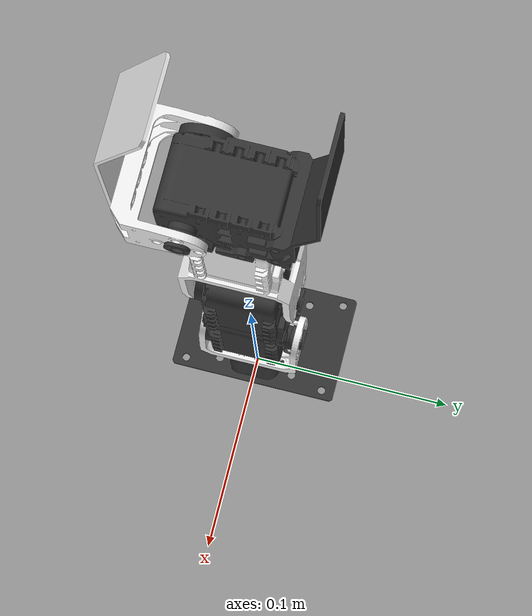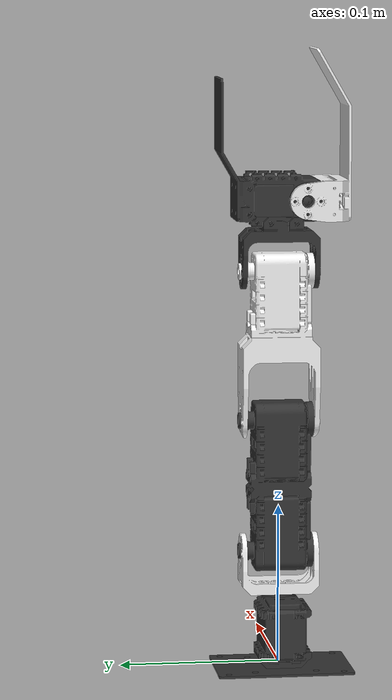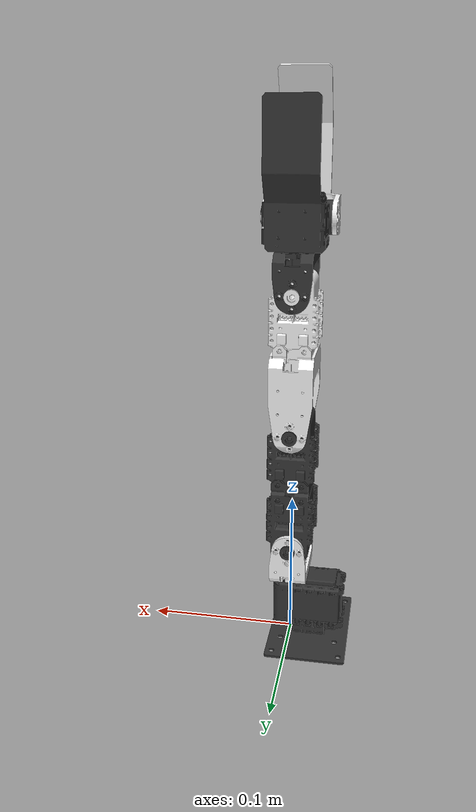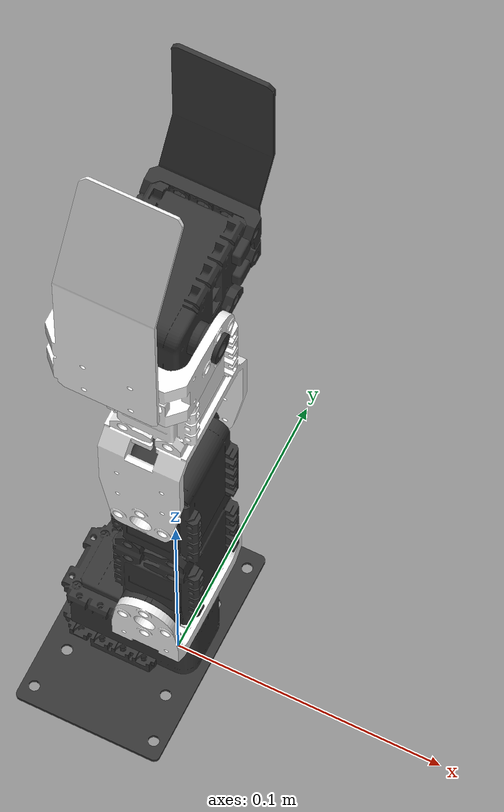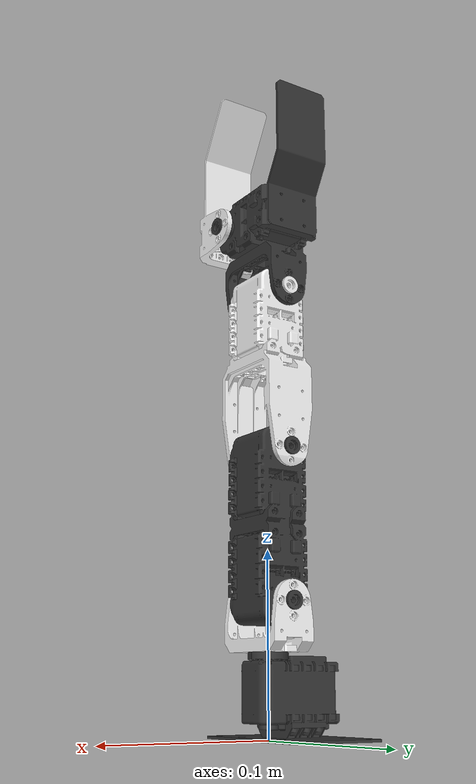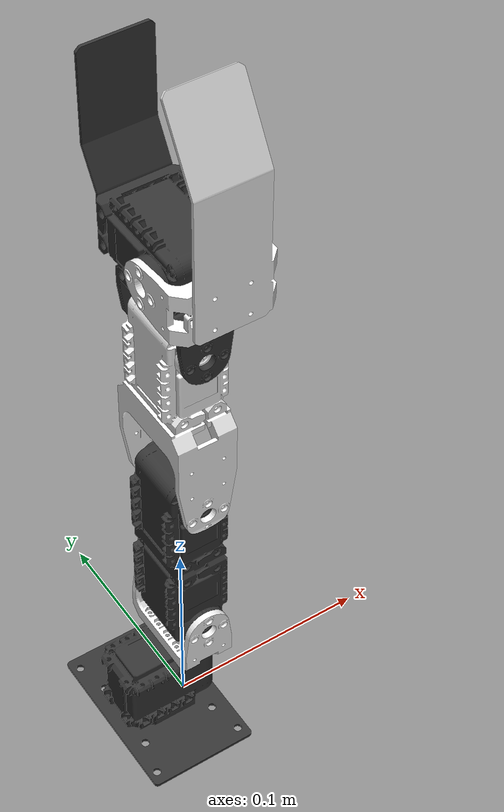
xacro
<?xml version="1.0"?>

<robot
    name="crane_plus"
    xmlns:xacro="http://ros.org/wiki/xacro"
    xmlns:sensor="http://playerstage.sourceforge.net/gazebo/xmlschema/#sensor"
    xmlns:controller="http://playerstage.sourceforge.net/gazebo/xmlschema/#controller"
    xmlns:interface="http://playerstage.sourceforge.net/gazebo/xmlschema/#interface">

  <xacro:include filename="$(find crane_plus_description)/urdf/crane_plus.xacro"/>
  <xacro:include filename="$(find crane_plus_description)/urdf/crane_plus.ros2_control.xacro"/>
  <xacro:include filename="$(find crane_plus_description)/urdf/crane_plus.gazebo.xacro"/>
  <xacro:include filename="$(find crane_plus_description)/urdf/crane_plus.gazebo_ros2_control.xacro"/>

  <xacro:arg name="use_gazebo" default="false" />
  <xacro:arg name="use_ignition" default="false" />
  <xacro:arg name="use_camera" default="false" />
  <xacro:arg name="port_name" default="/dev/ttyUSB0" />
  <xacro:arg name="baudrate" default="1000000" />
  <xacro:arg name="timeout_seconds" default="5.0" />
  <xacro:arg name="read_velocities" default="0" />
  <xacro:arg name="read_loads" default="0" />
  <xacro:arg name="read_voltages" default="0" />
  <xacro:arg name="read_temperatures" default="0" />
  <xacro:arg name="gz_control_config_package" default="" />
  <xacro:arg name="gz_control_config_file_path" default="" />
  <xacro:arg name="endtip_offset_xyz" default="0 0 0" />
  <xacro:arg name="endtip_offset_rpy" default="0 0 0" />

  <!-- Link to provide the location reference for the arm -->
  <link name="base_link"/>

  <!-- Used for fixing robot to Gazebo 'base_link' -->
  <link name="world"/>

  <joint name="base_link_to_world_joint" type="fixed">
    <parent link="world"/>
    <child link="base_link"/>
  </joint>

  <xacro:property name="NAME_LINK_BASE" value="crane_plus_base"/>
  <xacro:property name="NAME_LINK_1" value="crane_plus_link1"/>
  <xacro:property name="NAME_LINK_2" value="crane_plus_link2"/>
  <xacro:property name="NAME_LINK_3" value="crane_plus_link3"/>
  <xacro:property name="NAME_LINK_4" value="crane_plus_link4"/>
  <xacro:property name="NAME_LINK_HAND" value="crane_plus_link_hand"/>
  <xacro:property name="NAME_LINK_ENDTIP" value="crane_plus_link_endtip"/>

  <xacro:property name="NAME_JOINT_BASE" value="crane_plus_joint_base"/>
  <xacro:property name="NAME_JOINT_1" value="crane_plus_joint1"/>
  <xacro:property name="NAME_JOINT_2" value="crane_plus_joint2"/>
  <xacro:property name="NAME_JOINT_3" value="crane_plus_joint3"/>
  <xacro:property name="NAME_JOINT_4" value="crane_plus_joint4"/>
  <xacro:property name="NAME_JOINT_HAND" value="crane_plus_joint_hand"/>
  <xacro:property name="NAME_JOINT_ENDTIP" value="crane_plus_joint_endtip"/>

  <xacro:property name="M_PI" value="3.14159"/>
  <xacro:property name="TO_RADIAN" value="${M_PI / 180.0}"/>
  <xacro:property name="SERVO_HOME" value="${TO_RADIAN * 150.0}"/>
  <xacro:property name="JOINT_VELOCITY_LIMIT" value="2.0"/>
  <xacro:property name="JOINT_1_LOWER_LIMIT" value="${0.0 * TO_RADIAN - SERVO_HOME}"/>
  <xacro:property name="JOINT_1_UPPER_LIMIT" value="${300.0 * TO_RADIAN - SERVO_HOME}"/>
  <xacro:property name="JOINT_2_LOWER_LIMIT" value="${45.45 * TO_RADIAN - SERVO_HOME}"/>
  <xacro:property name="JOINT_2_UPPER_LIMIT" value="${252.20 * TO_RADIAN - SERVO_HOME}"/>
  <xacro:property name="JOINT_3_LOWER_LIMIT" value="${3.52 * TO_RADIAN - SERVO_HOME}"/>
  <xacro:property name="JOINT_3_UPPER_LIMIT" value="${290.62 * TO_RADIAN - SERVO_HOME}"/>
  <xacro:property name="JOINT_4_LOWER_LIMIT" value="${44.57 * TO_RADIAN - SERVO_HOME}"/>
  <xacro:property name="JOINT_4_UPPER_LIMIT" value="${251.32 * TO_RADIAN - SERVO_HOME}"/>
  <xacro:property name="JOINT_HAND_LOWER_LIMIT" value="${109.38 * TO_RADIAN - SERVO_HOME}"/>
  <xacro:property name="JOINT_HAND_UPPER_LIMIT" value="${188.27 * TO_RADIAN - SERVO_HOME}"/>

  <xacro:crane_plus
    parent="base_link"
    name_link_base="${NAME_LINK_BASE}"
    name_link_1="${NAME_LINK_1}"
    name_link_2="${NAME_LINK_2}"
    name_link_3="${NAME_LINK_3}"
    name_link_4="${NAME_LINK_4}"
    name_link_hand="${NAME_LINK_HAND}"
    name_link_endtip="${NAME_LINK_ENDTIP}"
    name_joint_base="${NAME_JOINT_BASE}"
    name_joint_1="${NAME_JOINT_1}"
    name_joint_2="${NAME_JOINT_2}"
    name_joint_3="${NAME_JOINT_3}"
    name_joint_4="${NAME_JOINT_4}"
    name_joint_hand="${NAME_JOINT_HAND}"
    name_joint_endtip="${NAME_JOINT_ENDTIP}"

    joints_vlimit="${JOINT_VELOCITY_LIMIT}"
    joint_1_lower_limit="${JOINT_1_LOWER_LIMIT}"
    joint_1_upper_limit="${JOINT_1_UPPER_LIMIT}"
    joint_2_lower_limit="${JOINT_2_LOWER_LIMIT}"
    joint_2_upper_limit="${JOINT_2_UPPER_LIMIT}"
    joint_3_lower_limit="${JOINT_3_LOWER_LIMIT}"
    joint_3_upper_limit="${JOINT_3_UPPER_LIMIT}"
    joint_4_lower_limit="${JOINT_4_LOWER_LIMIT}"
    joint_4_upper_limit="${JOINT_4_UPPER_LIMIT}"
    joint_hand_lower_limit="${JOINT_HAND_LOWER_LIMIT}"
    joint_hand_upper_limit="${JOINT_HAND_UPPER_LIMIT}"
    use_camera="$(arg use_camera)"
    endtip_offset_xyz="$(arg endtip_offset_xyz)"
    endtip_offset_rpy="$(arg endtip_offset_rpy)">
    <origin xyz="0 0 0"/>
  </xacro:crane_plus>

  <xacro:unless value="$(arg use_gazebo)">
    <xacro:crane_plus_ros2_control_settings
      name="crane_plus"
      name_joint_1="${NAME_JOINT_1}"
      name_joint_2="${NAME_JOINT_2}"
      name_joint_3="${NAME_JOINT_3}"
      name_joint_4="${NAME_JOINT_4}"
      name_joint_hand="${NAME_JOINT_HAND}"
      joint_1_lower_limit="${JOINT_1_LOWER_LIMIT}"
      joint_1_upper_limit="${JOINT_1_UPPER_LIMIT}"
      joint_2_lower_limit="${JOINT_2_LOWER_LIMIT}"
      joint_2_upper_limit="${JOINT_2_UPPER_LIMIT}"
      joint_3_lower_limit="${JOINT_3_LOWER_LIMIT}"
      joint_3_upper_limit="${JOINT_3_UPPER_LIMIT}"
      joint_4_lower_limit="${JOINT_4_LOWER_LIMIT}"
      joint_4_upper_limit="${JOINT_4_UPPER_LIMIT}"
      joint_hand_lower_limit="${JOINT_HAND_LOWER_LIMIT}"
      joint_hand_upper_limit="${JOINT_HAND_UPPER_LIMIT}"
      port_name="$(arg port_name)"
      baudrate="$(arg baudrate)"
      timeout_seconds="$(arg timeout_seconds)"
      read_velocities="$(arg read_velocities)"
      read_loads="$(arg read_loads)"
      read_voltages="$(arg read_voltages)"
      read_temperatures="$(arg read_temperatures)" />
  </xacro:unless>

  <xacro:if value="$(arg use_gazebo)">
    <xacro:gazebo_robot_settings
      name_link_base="${NAME_LINK_BASE}"
      name_link_1="${NAME_LINK_1}"
      name_link_2="${NAME_LINK_2}"
      name_link_3="${NAME_LINK_3}"
      name_link_4="${NAME_LINK_4}"
      name_link_hand="${NAME_LINK_HAND}"
      use_ignition="$(arg use_ignition)"
      config_package="$(arg gz_control_config_package)"
      config_file_path="$(arg gz_control_config_file_path)" />

    <xacro:crane_plus_gazebo_ros2_control_settings
      name="crane_plus"
      name_joint_1="${NAME_JOINT_1}"
      name_joint_2="${NAME_JOINT_2}"
      name_joint_3="${NAME_JOINT_3}"
      name_joint_4="${NAME_JOINT_4}"
      name_joint_hand="${NAME_JOINT_HAND}"
      joint_1_lower_limit="${JOINT_1_LOWER_LIMIT}"
      joint_1_upper_limit="${JOINT_1_UPPER_LIMIT}"
      joint_2_lower_limit="${JOINT_2_LOWER_LIMIT}"
      joint_2_upper_limit="${JOINT_2_UPPER_LIMIT}"
      joint_3_lower_limit="${JOINT_3_LOWER_LIMIT}"
      joint_3_upper_limit="${JOINT_3_UPPER_LIMIT}"
      joint_4_lower_limit="${JOINT_4_LOWER_LIMIT}"
      joint_4_upper_limit="${JOINT_4_UPPER_LIMIT}"
      joint_hand_lower_limit="${JOINT_HAND_LOWER_LIMIT}"
      joint_hand_upper_limit="${JOINT_HAND_UPPER_LIMIT}"
      use_ignition="$(arg use_ignition)" />
  </xacro:if>

</robot>

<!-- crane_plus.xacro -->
<robot xmlns:xacro="http://ros.org/wiki/xacro">

  <material name="black">
    <color rgba="0.2 0.2 0.2 1.0"/>
  </material>
  <material name="white">
    <color rgba="0.95 0.95 0.95 1.0"/>
  </material>
  <material name="silver">
    <color rgba="0.75 0.75 0.75 1.0"/>
  </material>
  <material name="red">
    <color rgba="1.0 0.3 0.3 1.0"/>
  </material>
  <material name="green">
    <color rgba="0.3 1.0 0.3 1.0"/>
  </material>
  <material name="blue">
    <color rgba="0.3 0.3 1.0 1.0"/>
  </material>

  <xacro:property name="SCALE_MM" value="0.001"/>
  <xacro:property name="SCALE_CM" value="0.01"/>

  <xacro:property name="MESH_LINK_BASE" value="crane_plus_description/meshes/visual/body_20201013.stl"/>
  <xacro:property name="MESH_LINK_1" value="crane_plus_description/meshes/visual/Link1_20201013.stl"/>
  <xacro:property name="MESH_LINK_2" value="crane_plus_description/meshes/visual/Link2_20201013.stl"/>
  <xacro:property name="MESH_LINK_3" value="crane_plus_description/meshes/visual/Link3_20201013.stl"/>
  <xacro:property name="MESH_LINK_4" value="crane_plus_description/meshes/visual/Link4_20201013.stl"/>
  <xacro:property name="MESH_LINK_HAND" value="crane_plus_description/meshes/visual/Hand_20201013.stl"/>

  <xacro:property name="MESH_COLLISION_LINK_BASE" value="crane_plus_description/meshes/collision/body_collision_20201013.stl"/>
  <xacro:property name="MESH_COLLISION_LINK_1" value="crane_plus_description/meshes/collision/Link1_collision_20201013.stl"/>
  <xacro:property name="MESH_COLLISION_LINK_2" value="crane_plus_description/meshes/collision/Link2_collision_20201013.stl"/>
  <xacro:property name="MESH_COLLISION_LINK_3" value="crane_plus_description/meshes/collision/Link3_collision_20201013.stl"/>
  <xacro:property name="MESH_COLLISION_LINK_4" value="crane_plus_description/meshes/collision/Link4_collision_20201013.stl"/>
  <xacro:property name="MESH_COLLISION_LINK_HAND" value="crane_plus_description/meshes/collision/Hand_collision_20201013.stl"/>

  <xacro:macro name="crane_plus"
      params="parent
              name_link_base
              name_link_1
              name_link_2
              name_link_3
              name_link_4
              name_link_hand
              name_link_endtip
              name_joint_base
              name_joint_1
              name_joint_2
              name_joint_3
              name_joint_4
              name_joint_hand
              name_joint_endtip
              joints_vlimit
              joint_1_lower_limit
              joint_1_upper_limit
              joint_2_lower_limit
              joint_2_upper_limit
              joint_3_lower_limit
              joint_3_upper_limit
              joint_4_lower_limit
              joint_4_upper_limit
              joint_hand_lower_limit
              joint_hand_upper_limit
              use_camera
              endtip_offset_xyz
              endtip_offset_rpy
              *origin">

    <joint name="${name_joint_base}" type="fixed">
      <xacro:insert_block name="origin"/>
      <parent link="${parent}"/>
      <child link="${name_link_base}"/>
    </joint>

    <link name="${name_link_base}">
      <visual>
        <origin xyz="0 0 0" rpy="0 0 0"/>
        <geometry>
          <mesh filename="package://${MESH_LINK_BASE}"
              scale="1 1 1"/>
        </geometry>
        <material name="black"/>
      </visual>

      <collision>
        <origin xyz="0 0 0" rpy="0 0 0"/>
        <geometry>
          <mesh filename="package://${MESH_COLLISION_LINK_BASE}"
              scale="1 1 1"/>
        </geometry>
        <material name="black"/>
      </collision>

      <inertial>
        <mass value="0.06645"/>
        <origin xyz="-1.31E-02 7.00E-06 2.12E-02" rpy="0 ${M_PI/8} 0"/>
        <inertia ixx="1.66E-05" ixy="1.80E-09" ixz="-5.75E-07" iyy="2.36E-05" iyz="-3.23E-08" izz="1.77E-05"/>
      </inertial>
    </link>

    <joint name="${name_joint_1}" type="revolute">
      <origin xyz="0 0 0.0454" rpy="0 0 0"/>
      <axis xyz="0 0 1"/>
      <limit
        effort="1.5"
        velocity="${joints_vlimit}"
        lower="${joint_1_lower_limit}"
        upper="${joint_1_upper_limit}"
        />
      <parent link="${name_link_base}"/>
      <child link="${name_link_1}"/>
      <dynamics damping="1.0e-6" friction="2.0e-1"/>
    </joint>

    <link name="${name_link_1}">
      <visual>
        <origin xyz="0 0 0" rpy="0 0 ${M_PI}"/>
        <geometry>
          <mesh filename="package://${MESH_LINK_1}"
              scale="1 1 1"/>
        </geometry>
        <material name="white"/>
      </visual>

      <collision>
        <origin xyz="0 0 0" rpy="0 0 ${M_PI}"/>
        <geometry>
          <mesh filename="package://${MESH_COLLISION_LINK_1}"
              scale="1 1 1"/>
        </geometry>
        <material name="white"/>
      </collision>

      <inertial>
        <mass value="0.007729"/>
        <origin xyz="2.00E-06 0.0 1.09E-02" rpy="0 0 0"/>
        <inertia ixx="3.43E-06" ixy="0.0" ixz="1.66E-10" iyy="1.30E-06" iyz="0.0" izz="3.05E-06"/>
      </inertial>
    </link>

    <joint name="${name_joint_2}" type="revolute">
      <origin xyz="0 0 0.026" rpy="0 0 0"/>
      <axis xyz="0 1 0"/>
      <limit
        effort="1.5"
        velocity="${joints_vlimit}"
        lower="${joint_2_lower_limit}"
        upper="${joint_2_upper_limit}"
        />
      <parent link="${name_link_1}"/>
      <child link="${name_link_2}"/>
      <dynamics damping="1.0e-6" friction="2.0e-1"/>
    </joint>

    <link name="${name_link_2}">
      <visual>
        <origin xyz="0 0 0" rpy="${M_PI/2} 0 0"/>
        <geometry>
          <mesh filename="package://${MESH_LINK_2}"
              scale="1 1 1"/>
        </geometry>
        <material name="black"/>
      </visual>

      <collision>
        <origin xyz="0 0 0" rpy="${M_PI/2} 0 0"/>
        <geometry>
          <mesh filename="package://${MESH_COLLISION_LINK_2}"
              scale="1 1 1"/>
        </geometry>
        <material name="black"/>
      </collision>

      <inertial>
        <mass value="0.116745"/>
        <origin xyz="7.99E-04 1.00E-06 4.15E-02" rpy="${M_PI/2} 0 0"/>
        <inertia ixx="1.25E-04" ixy="6.83E-08" ixz="9.50E-11" iyy="1.92E-05" iyz="0.0" izz="1.19E-04"/>
      </inertial>
    </link>

    <joint name="${name_joint_3}" type="revolute">
      <origin xyz="0 0 0.083" rpy="0 0 0"/>
      <axis xyz="0 -1 0"/>
      <limit
        effort="1.5"
        velocity="${joints_vlimit}"
        lower="${joint_3_lower_limit}"
        upper="${joint_3_upper_limit}"
        />
      <parent link="${name_link_2}"/>
      <child link="${name_link_3}"/>
      <dynamics damping="1.0e-6" friction="2.0e-1"/>
    </joint>

    <link name="${name_link_3}">
      <visual>
        <origin xyz="0 0 0" rpy="${M_PI/2} 0 0"/>
        <geometry>
          <mesh filename="package://${MESH_LINK_3}"
              scale="1 1 1"/>
        </geometry>
        <material name="white"/>
      </visual>

      <collision>
        <origin xyz="0 0 0" rpy="${M_PI/2} 0 0"/>
        <geometry>
          <mesh filename="package://${MESH_COLLISION_LINK_3}"
              scale="1 1 1"/>
        </geometry>
        <material name="white"/>
      </collision>

      <inertial>
        <mass value="0.072317"/>
        <origin xyz="6.45E-04 -1.38E-04 7.01E-02" rpy="${M_PI/2} 0 0"/>
        <inertia ixx="5.41E-05" ixy="-2.28E-07" ixz="-2.67E-09" iyy="1.60E-05" iyz="-5.35E-07" izz="4.69E-05"/>
      </inertial>
    </link>

    <joint name="${name_joint_4}" type="revolute">
      <origin xyz="0 0 0.0935" rpy="0 0 0"/>
      <axis xyz="0 -1 0"/>
      <limit
        effort="1.5"
        velocity="${joints_vlimit}"
        lower="${joint_4_lower_limit}"
        upper="${joint_4_upper_limit}"
        />
      <parent link="${name_link_3}"/>
      <child link="${name_link_4}"/>
      <dynamics damping="1.0e-6" friction="2.0e-1"/>
    </joint>

    <link name="${name_link_4}">
      <visual>
        <origin xyz="0 0 0" rpy="${M_PI/2} 0 0"/>
        <geometry>
          <mesh filename="package://${MESH_LINK_4}"
              scale="1 1 1"/>
        </geometry>
        <material name="black"/>
      </visual>

      <collision>
        <origin xyz="0 0 0" rpy="${M_PI/2} 0 0"/>
        <geometry>
          <mesh filename="package://${MESH_COLLISION_LINK_4}"
              scale="1 1 1"/>
        </geometry>
        <material name="black"/>
      </collision>

      <inertial>
        <mass value="0.08185"/>
        <origin xyz="6.45E-04 -5.70E-04 4.62E-02" rpy="${M_PI/2} 0 0"/>
        <inertia ixx="5.91E-05" ixy="-5.11E-08" ixz="3.49E-07" iyy="3.62E-05" iyz="1.37E-05" izz="3.98E-05"/>
      </inertial>
    </link>

    <joint name="${name_joint_hand}" type="revolute">
      <origin xyz="0 -0.0145 0.045" rpy="0 0 0"/>
      <axis xyz="-1 0 0"/>
      <limit
        effort="1.5"
        velocity="${joints_vlimit}"
        lower="${joint_hand_lower_limit}"
        upper="${joint_hand_upper_limit}"
        />
      <parent link="${name_link_4}"/>
      <child link="${name_link_hand}"/>
      <dynamics damping="1.0e-6" friction="2.0e-1"/>
    </joint>

    <link name="${name_link_hand}">
      <visual>
        <origin xyz="0 0 0" rpy="0 -${M_PI/2} 0"/>
        <geometry>
          <mesh filename="package://${MESH_LINK_HAND}"
              scale="1 1 1"/>
        </geometry>
        <material name="white"/>
      </visual>

      <collision>
        <origin xyz="0 0 0" rpy="0 -${M_PI/2} 0"/>
        <geometry>
          <mesh filename="package://${MESH_COLLISION_LINK_HAND}"
              scale="1 1 1"/>
        </geometry>
        <material name="white"/>
      </collision>

      <inertial>
        <mass value="0.022901"/>
        <origin xyz="0.0 -2.04E-02 2.77E-02" rpy="0 ${M_PI/2} 0"/>
        <inertia ixx="5.76E-06" ixy="-4.66E-07" ixz="0.0" iyy="2.76E-05" iyz="0.0" izz="2.52E-05"/>
      </inertial>
    </link>

    <!-- Endtip for MoveIt -->
    <joint name="${name_joint_endtip}" type="fixed">
      <origin xyz="${endtip_offset_xyz}" rpy="${endtip_offset_rpy}"/>
      <parent link="${name_link_4}"/>
      <child link="${name_link_endtip}"/>
    </joint>

    <link name="${name_link_endtip}"/>

    <!-- camera -->
    <xacro:if value="$(arg use_camera)">
      <xacro:include filename="$(find crane_plus_description)/urdf/camera.urdf.xacro" />
      <xacro:include filename="$(find crane_plus_description)/urdf/camera_stand.urdf.xacro" />
      <xacro:sensor_camera parent="${name_link_base}" />
      <xacro:camera_stand parent="${name_link_base}" />
    </xacro:if>

  </xacro:macro>
</robot>
